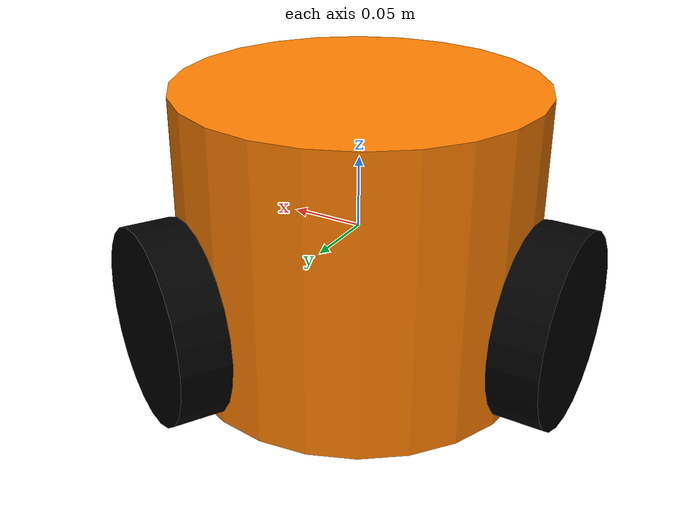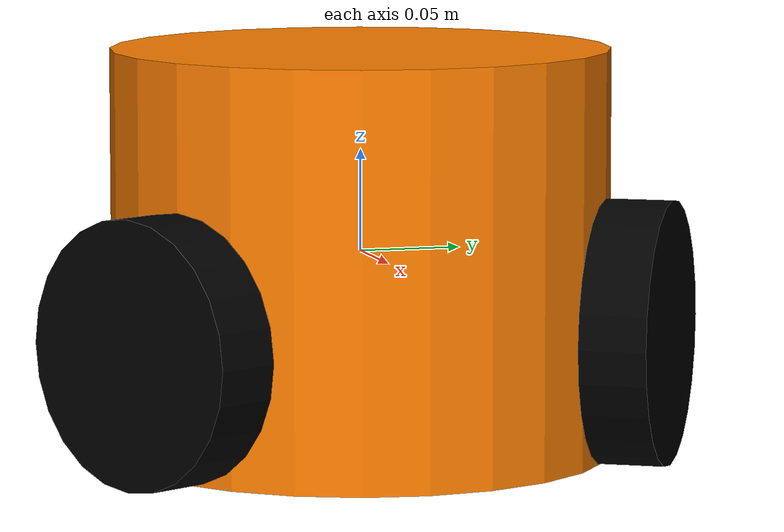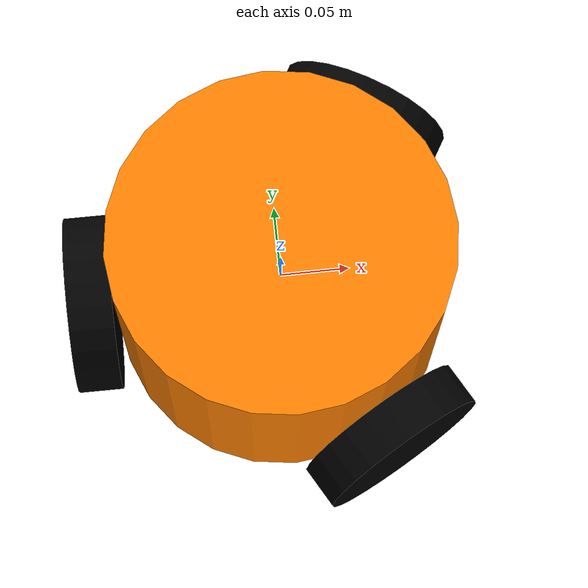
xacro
<?xml version="1.0"?>
<!-- Basic omnidirectional drive mobile base -->
<robot xmlns:xacro="http://www.ros.org/wiki/xacro" name="omnidrive_robot">
  <xacro:arg name="prefix" default="" />
  <xacro:arg name="use_mock_hardware" default="false" />

  <xacro:include filename="$(find odrive_omnibot)/urdf/omnibot_description.urdf.xacro" />

  <!-- Import Rviz colors -->

  <!-- Import omnibot ros2_control description -->
  <xacro:include filename="$(find odrive_omnibot)/urdf/omnibot.ros2_control.xacro" />

  <xacro:omnibot prefix="$(arg prefix)" />

  <xacro:omnibot_ros2_control
    name="OmniBot" prefix="$(arg prefix)" use_mock_hardware="$(arg use_mock_hardware)"/>

</robot>

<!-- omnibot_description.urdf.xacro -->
<robot xmlns:xacro="http://www.ros.org/wiki/xacro">

  <xacro:macro name="omnibot" params="prefix">

    <!-- Constants for robot dimensions -->
    <xacro:property name="PI" value="3.1415926535897931"/>
    <xacro:property name="base_mass" value="1.0" /> <!-- arbitrary value for base mass -->
    <xacro:property name="base_radius" value="0.1225" />
    <xacro:property name="base_height" value="0.2" />
    <xacro:property name="wheel_mass" value="0.3" /> <!-- arbitrary value for wheel mass -->
    <xacro:property name="wheel_thickness" value="0.0326" />
    <xacro:property name="wheel_radius" value="0.064702" />
    <xacro:property name="wheel_distance" value="0.13889" /> <!-- Distance from robot center to wheel center -->
    <xacro:property name="wheel0_angle" value="${PI/3}" /> <!-- 60 degrees in radians -->
    <xacro:property name="wheel1_angle" value="${PI}" /> <!-- 180 degrees in radians -->
    <xacro:property name="wheel2_angle" value="${-PI/3}" /> <!-- -60 degrees in radians -->
    <xacro:property name="z_offset" value="-${base_height/2 - wheel_radius}" /> <!-- Space between base and wheels -->

    <!-- Base Link -->
    <link name="${prefix}base_link">
      <collision>
        <origin xyz="0 0 0" rpy="0 0 0"/>
        <geometry>
          <cylinder radius="${base_radius}" length="${base_height}"/>
        </geometry>
      </collision>

      <visual>
        <origin xyz="0 0 0" rpy="0 0 0"/>
        <geometry>
          <cylinder radius="${base_radius}" length="${base_height}"/>
        </geometry>
        <material name="orange"/>
      </visual>

      <inertial>
        <origin xyz="0 0 0" rpy="0 0 0"/>
        <mass value="${base_mass}"/>
        <inertia
          ixx="${base_mass / 12.0 * (3*base_radius*base_radius + base_height*base_height)}" ixy="0.0" ixz="0.0"
          iyy="${base_mass / 12.0 * (3*base_radius*base_radius + base_height*base_height)}" iyz="0.0"
          izz="${base_mass / 2.0 * base_radius*base_radius}"/>
      </inertial>
    </link>

    <!-- Wheel 0 joint (60 degrees) -->
    <joint name="${prefix}wheel0_joint" type="continuous">
      <parent link="${prefix}base_link"/>
      <child link="${prefix}wheel0"/>
      <origin xyz="${wheel_distance * cos(wheel0_angle)} ${wheel_distance * sin(wheel0_angle)} ${z_offset}" rpy="0 0 ${wheel0_angle - PI/2}"/>
      <!-- Changed joint axis from "0 0 1" to "0 -1 0" to match wheel geometry -->
      <axis xyz="0 -1 0"/>
      <dynamics damping="0.2"/>
      <limit effort="100" velocity="10.0"/>
    </joint>

    <!-- Wheel 0 Link -->
    <link name="${prefix}wheel0">
      <collision>
        <origin xyz="0 0 0" rpy="${PI/2} 0 0"/>
        <geometry>
          <cylinder length="${wheel_thickness}" radius="${wheel_radius}"/>
        </geometry>
      </collision>

      <visual>
        <origin xyz="0 0 0" rpy="${PI/2} 0 0"/>
        <geometry>
          <cylinder length="${wheel_thickness}" radius="${wheel_radius}"/>
        </geometry>
        <material name="black"/>
      </visual>

      <inertial>
        <origin xyz="0 0 0" rpy="${PI/2} 0 0"/>
        <mass value="${wheel_mass}"/>
        <inertia
          ixx="${wheel_mass / 12.0 * (3*wheel_radius*wheel_radius + wheel_thickness*wheel_thickness)}" ixy="0.0" ixz="0.0"
          iyy="${wheel_mass / 12.0 * (3*wheel_radius*wheel_radius + wheel_thickness*wheel_thickness)}" iyz="0.0"
          izz="${wheel_mass / 2.0 * wheel_radius*wheel_radius}"/>
      </inertial>
    </link>

    <!-- Wheel 1 joint (180 degrees) -->
    <joint name="${prefix}wheel1_joint" type="continuous">
      <parent link="${prefix}base_link"/>
      <child link="${prefix}wheel1"/>
      <origin xyz="${wheel_distance * cos(wheel1_angle)} ${wheel_distance * sin(wheel1_angle)} ${z_offset}" rpy="0 0 ${wheel1_angle - PI/2}"/>
      <!-- Changed joint axis from "0 0 1" to "0 -1 0" to match wheel geometry -->
      <axis xyz="0 -1 0"/>
      <dynamics damping="0.2"/>
      <limit effort="100" velocity="10.0"/>
    </joint>

    <!-- Wheel 1 Link -->
    <link name="${prefix}wheel1">
      <collision>
        <origin xyz="0 0 0" rpy="${PI/2} 0 0"/>
        <geometry>
          <cylinder length="${wheel_thickness}" radius="${wheel_radius}"/>
        </geometry>
      </collision>

      <visual>
        <origin xyz="0 0 0" rpy="${PI/2} 0 0"/>
        <geometry>
          <cylinder length="${wheel_thickness}" radius="${wheel_radius}"/>
        </geometry>
        <material name="black"/>
      </visual>

      <inertial>
        <origin xyz="0 0 0" rpy="${PI/2} 0 0"/>
        <mass value="${wheel_mass}"/>
        <inertia
          ixx="${wheel_mass / 12.0 * (3*wheel_radius*wheel_radius + wheel_thickness*wheel_thickness)}" ixy="0.0" ixz="0.0"
          iyy="${wheel_mass / 12.0 * (3*wheel_radius*wheel_radius + wheel_thickness*wheel_thickness)}" iyz="0.0"
          izz="${wheel_mass / 2.0 * wheel_radius*wheel_radius}"/>
      </inertial>
    </link>

    <!-- Wheel 2 joint (-60 degrees) -->
    <joint name="${prefix}wheel2_joint" type="continuous">
      <parent link="${prefix}base_link"/>
      <child link="${prefix}wheel2"/>
      <origin xyz="${wheel_distance * cos(wheel2_angle)} ${wheel_distance * sin(wheel2_angle)} ${z_offset}" rpy="0 0 ${wheel2_angle - PI/2}"/>
      <!-- Changed joint axis from "0 0 1" to "0 -1 0" to match wheel geometry -->
      <axis xyz="0 -1 0"/>
      <dynamics damping="0.2"/>
      <limit effort="100" velocity="10.0"/>
    </joint>

    <!-- Wheel 2 Link -->
    <link name="${prefix}wheel2">
      <collision>
        <origin xyz="0 0 0" rpy="${PI/2} 0 0"/>
        <geometry>
          <cylinder length="${wheel_thickness}" radius="${wheel_radius}"/>
        </geometry>
      </collision>

      <visual>
        <origin xyz="0 0 0" rpy="${PI/2} 0 0"/>
        <geometry>
          <cylinder length="${wheel_thickness}" radius="${wheel_radius}"/>
        </geometry>
        <material name="black"/>
      </visual>

      <inertial>
        <origin xyz="0 0 0" rpy="${PI/2} 0 0"/>
        <mass value="${wheel_mass}"/>
        <inertia
          ixx="${wheel_mass / 12.0 * (3*wheel_radius*wheel_radius + wheel_thickness*wheel_thickness)}" ixy="0.0" ixz="0.0"
          iyy="${wheel_mass / 12.0 * (3*wheel_radius*wheel_radius + wheel_thickness*wheel_thickness)}" iyz="0.0"
          izz="${wheel_mass / 2.0 * wheel_radius*wheel_radius}"/>
      </inertial>
    </link>

    <!-- Define materials -->
    <material name="orange">
      <color rgba="1 0.5 0 1"/>
    </material>

    <material name="black">
      <color rgba="0 0 0 1"/>
    </material>

    <material name="white">
      <color rgba="1 1 1 1"/>
    </material>

  </xacro:macro>
</robot>
